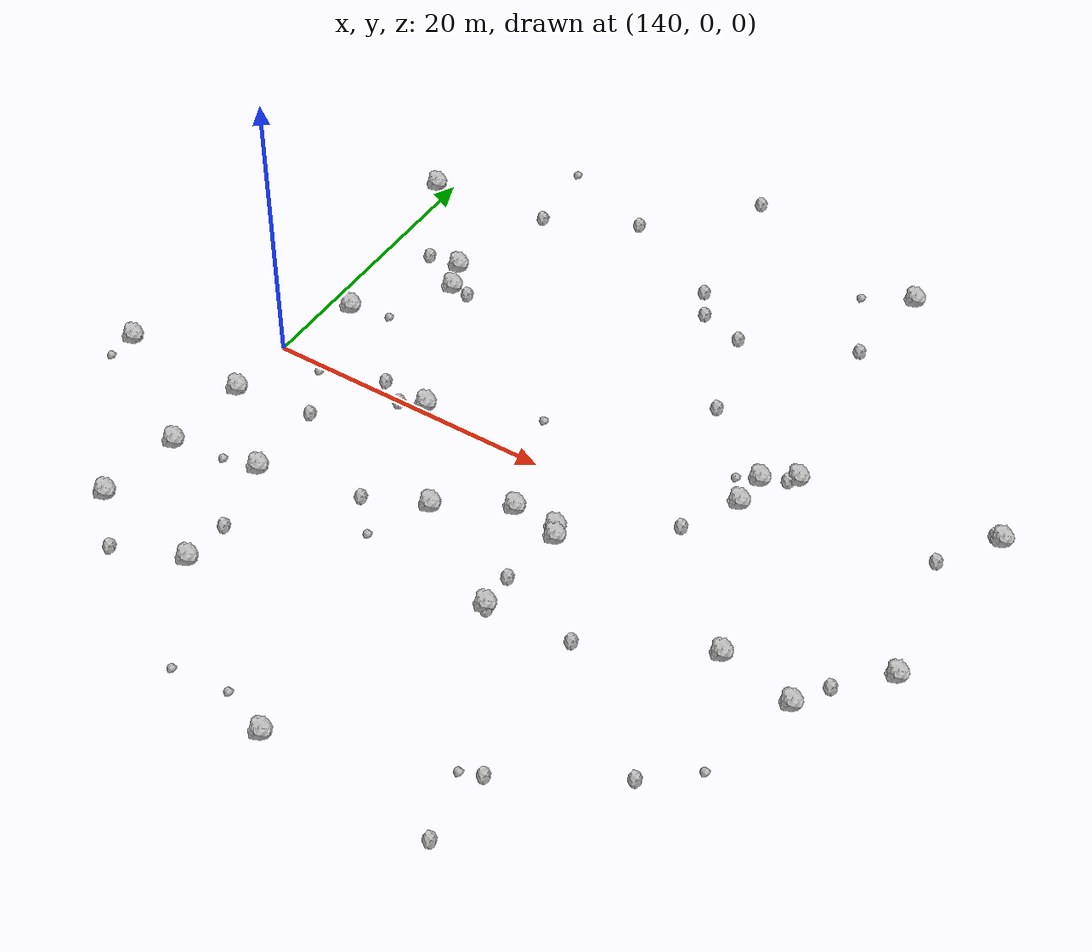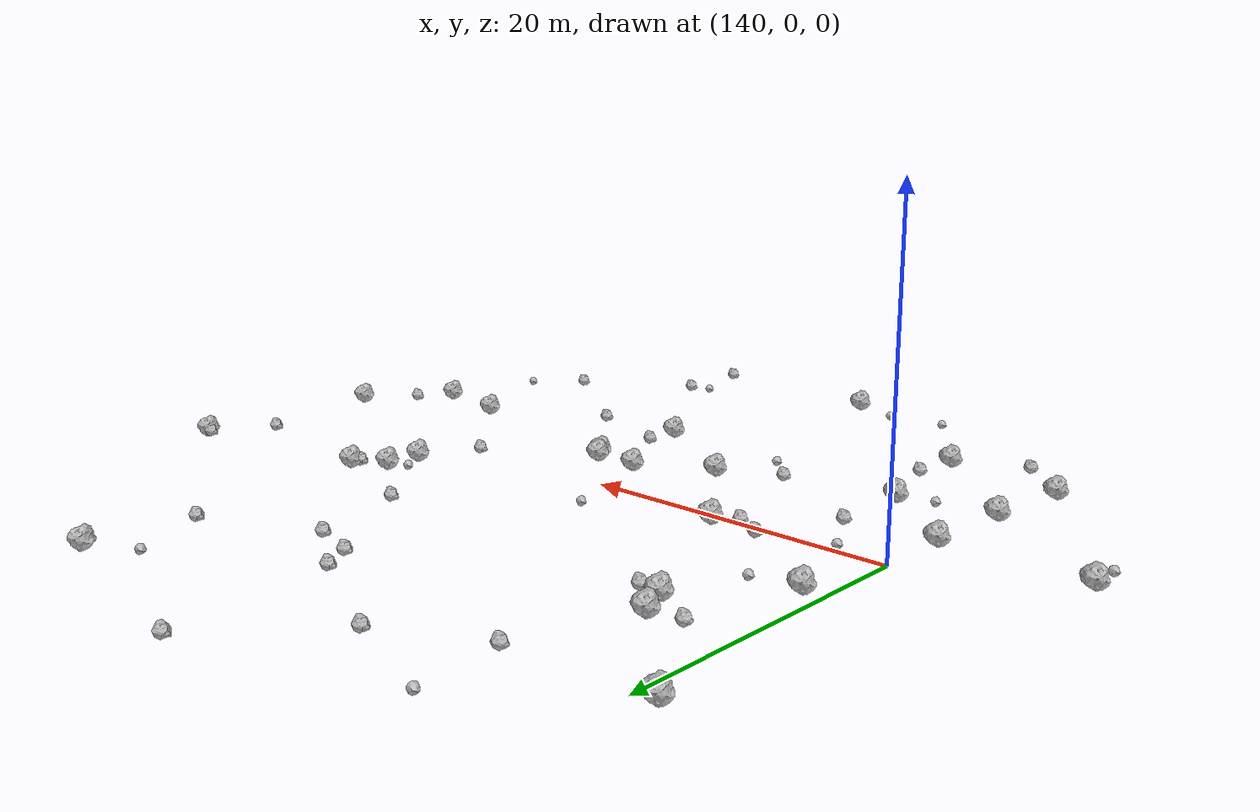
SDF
<sdf version="1.6">
 <world name="default">
  <include><uri>model://sun</uri></include>
  <model name="rock1_4_2">
   <include><uri>model://rock1</uri><pose>139.98322655730263 -4.9391794960433835 0.5 0 0 0</pose></include>
  </model>
  <model name="rock1_4_3">
   <include><uri>model://rock1</uri><pose>146.6829092603969 -18.51154529494071 0.5 0 0 0</pose></include>
  </model>
  <model name="rock1_4_4">
   <include><uri>model://rock1</uri><pose>141.50115227832333 5.5322805019118135 0.5 0 0 0</pose></include>
  </model>
  <model name="rock1_4_5">
   <include><uri>model://rock1</uri><pose>156.54032484201812 -6.746740473950506 0.5 0 0 0</pose></include>
  </model>
  <model name="rock1_4_6">
   <include><uri>model://rock1</uri><pose>173.13317273243348 26.76240483843972 0.5 0 0 0</pose></include>
  </model>
  <model name="rock1_4_7">
   <include><uri>model://rock1</uri><pose>187.7747009688663 9.903902033131722 0.5 0 0 0</pose></include>
  </model>
  <model name="rock1_4_8">
   <include><uri>model://rock1</uri><pose>164.5399935904218 -4.8092274558916195 0.5 0 0 0</pose></include>
  </model>
  <model name="rock1_4_9">
   <include><uri>model://rock1</uri><pose>131.13668664782364 -4.766689097549989 0.5 0 0 0</pose></include>
  </model>
  <model name="rock1_4_10">
   <include><uri>model://rock1</uri><pose>177.8880388827148 -7.362613293737663 0.5 0 0 0</pose></include>
  </model>
  <model name="rock1_4_11">
   <include><uri>model://rock1</uri><pose>187.33705126843302 -3.214945462565396 0.5 0 0 0</pose></include>
  </model>
  <model name="rock1_4_12">
   <include><uri>model://rock1</uri><pose>145.2265720160533 12.962065052158614 0.5 0 0 0</pose></include>
  </model>
  <model name="rock1_4_13">
   <include><uri>model://rock1</uri><pose>138.99488661994974 19.40030157969874 0.5 0 0 0</pose></include>
  </model>
  <model name="rock1_4_14">
   <include><uri>model://rock1</uri><pose>172.67673752829654 6.366246679455678 0.5 0 0 0</pose></include>
  </model>
  <model name="rock1_4_15">
   <include><uri>model://rock1</uri><pose>172.5883245059369 3.921640936934992 0.5 0 0 0</pose></include>
  </model>
  <model name="rock1_4_16">
   <include><uri>model://rock1</uri><pose>164.07481888295106 -11.77114898170299 0.5 0 0 0</pose></include>
  </model>
  <model name="rock1_4_17">
   <include><uri>model://rock1</uri><pose>145.52401125802854 -9.945594207063365 0.5 0 0 0</pose></include>
  </model>
  <model name="rock1_4_18">
   <include><uri>model://rock1</uri><pose>138.86175886567014 -16.930379601042915 0.5 0 0 0</pose></include>
  </model>
  <model name="rock1_4_19">
   <include><uri>model://rock1</uri><pose>158.6945756073856 -26.828574528778383 0.5 0 0 0</pose></include>
  </model>
  <model name="rock1_4_20">
   <include><uri>model://rock1</uri><pose>174.69322289370163 7.707764404608163 0.5 0 0 0</pose></include>
  </model>
  <model name="rock1_4_21">
   <include><uri>model://rock1</uri><pose>161.09106545353396 -4.055856849384696 0.5 0 0 0</pose></include>
  </model>
  <model name="rock1_4_22">
   <include><uri>model://rock1</uri><pose>151.17888538414357 0.5036489442901555 0.5 0 0 0</pose></include>
  </model>
  <model name="rock1_4_23">
   <include><uri>model://rock1</uri><pose>183.17537605905753 -8.446394894321159 0.5 0 0 0</pose></include>
  </model>
  <model name="rock1_4_24">
   <include><uri>model://rock1</uri><pose>139.58498180401375 -11.00700763470173 0.5 0 0 0</pose></include>
  </model>
  <model name="rock1_4_25">
   <include><uri>model://rock1</uri><pose>164.14632373489687 -4.134782612445548 0.5 0 0 0</pose></include>
  </model>
  <model name="rock1_4_26">
   <include><uri>model://rock1</uri><pose>146.09643735205785 10.943532728056866 0.5 0 0 0</pose></include>
  </model>
  <model name="rock2_4_0">
   <include><uri>model://rock2</uri><pose>160.8107942080791 19.73469211330285 0.3 0 0 0</pose></include>
  </model>
  <model name="rock2_4_1">
   <include><uri>model://rock2</uri><pose>171.16762547360722 -22.459086385753373 0.3 0 0 0</pose></include>
  </model>
  <model name="rock2_4_2">
   <include><uri>model://rock2</uri><pose>143.02310037742467 12.75552279222461 0.3 0 0 0</pose></include>
  </model>
  <model name="rock2_4_3">
   <include><uri>model://rock2</uri><pose>159.45477770778373 29.967337413647527 0.3 0 0 0</pose></include>
  </model>
  <model name="rock2_4_4">
   <include><uri>model://rock2</uri><pose>147.77424065760184 0.8664687863613594 0.3 0 0 0</pose></include>
  </model>
  <model name="rock2_4_5">
   <include><uri>model://rock2</uri><pose>147.39316222965326 20.32302541111168 0.3 0 0 0</pose></include>
  </model>
  <model name="rock2_4_6">
   <include><uri>model://rock2</uri><pose>171.15610506026326 -27.778739797867523 0.3 0 0 0</pose></include>
  </model>
  <model name="rock2_4_7">
   <include><uri>model://rock2</uri><pose>167.19803936725103 10.466614243856355 0.3 0 0 0</pose></include>
  </model>
  <model name="rock2_4_8">
   <include><uri>model://rock2</uri><pose>169.9621795194494 -11.383922348714236 0.3 0 0 0</pose></include>
  </model>
  <model name="rock2_4_9">
   <include><uri>model://rock2</uri><pose>149.59394983097712 -0.2285622877326965 0.3 0 0 0</pose></include>
  </model>
  <model name="rock2_4_10">
   <include><uri>model://rock2</uri><pose>170.64706248809298 0.1645981223311992 0.3 0 0 0</pose></include>
  </model>
  <model name="rock2_4_11">
   <include><uri>model://rock2</uri><pose>142.0897371813823 -20.32920742476874 0.3 0 0 0</pose></include>
  </model>
  <model name="rock2_4_12">
   <include><uri>model://rock2</uri><pose>161.96832455600466 17.817918868401193 0.3 0 0 0</pose></include>
  </model>
  <model name="rock2_4_13">
   <include><uri>model://rock2</uri><pose>172.42524355031455 20.225455248701437 0.3 0 0 0</pose></include>
  </model>
  <model name="rock2_4_14">
   <include><uri>model://rock2</uri><pose>153.4305260013198 23.366511276113997 0.3 0 0 0</pose></include>
  </model>
  <model name="rock2_4_15">
   <include><uri>model://rock2</uri><pose>146.9157499258153 -15.140916466931495 0.3 0 0 0</pose></include>
  </model>
  <model name="rock2_4_16">
   <include><uri>model://rock2</uri><pose>185.18970145684398 6.098815928842882 0.3 0 0 0</pose></include>
  </model>
  <model name="rock2_4_17">
   <include><uri>model://rock2</uri><pose>152.5556379157435 -8.518406867659845 0.3 0 0 0</pose></include>
  </model>
  <model name="rock2_4_18">
   <include><uri>model://rock2</uri><pose>187.2586773788891 9.989629752530242 0.3 0 0 0</pose></include>
  </model>
  <model name="rock2_4_19">
   <include><uri>model://rock2</uri><pose>164.30279105968287 -11.994272346676354 0.3 0 0 0</pose></include>
  </model>
  <model name="rock2_4_20">
   <include><uri>model://rock2</uri><pose>145.40469273941164 -4.247884957167624 0.3 0 0 0</pose></include>
  </model>
  <model name="rock2_4_21">
   <include><uri>model://rock2</uri><pose>178.47869874562872 -18.040058311371464 0.3 0 0 0</pose></include>
  </model>
  <model name="rock2_4_22">
   <include><uri>model://rock2</uri><pose>163.976263715248 -9.170876790576404 0.3 0 0 0</pose></include>
  </model>
  <model name="rock2_4_23">
   <include><uri>model://rock2</uri><pose>174.25552789283557 7.199885762822106 0.3 0 0 0</pose></include>
  </model>
  <model name="rock2_4_24">
   <include><uri>model://rock2</uri><pose>184.51623707898202 -6.123821970238254 0.3 0 0 0</pose></include>
  </model>
  <model name="rock2_4_25">
   <include><uri>model://rock2</uri><pose>165.07686152316225 16.913340099193405 0.3 0 0 0</pose></include>
  </model>
  <model name="rock2_4_26">
   <include><uri>model://rock2</uri><pose>147.4404160338276 10.816026596584003 0.3 0 0 0</pose></include>
  </model>
  <model name="rock3_4_0">
   <include><uri>model://rock3</uri><pose>143.1124372567395 -10.480098717523447 0.2 0 0 0</pose></include>
  </model>
  <model name="rock3_4_1">
   <include><uri>model://rock3</uri><pose>155.2284681575948 -25.446165935485922 0.2 0 0 0</pose></include>
  </model>
  <model name="rock3_4_2">
   <include><uri>model://rock3</uri><pose>169.7516898792399 -22.987637056584006 0.2 0 0 0</pose></include>
  </model>
  <model name="rock3_4_3">
   <include><uri>model://rock3</uri><pose>151.3266590755743 -25.83862939733295 0.2 0 0 0</pose></include>
  </model>
  <model name="rock3_4_4">
   <include><uri>model://rock3</uri><pose>181.46649628148822 -15.437436542897256 0.2 0 0 0</pose></include>
  </model>
  <model name="rock3_4_5">
   <include><uri>model://rock3</uri><pose>143.42262880751653 -0.6502110918916024 0.2 0 0 0</pose></include>
  </model>
  <model name="rock3_4_6">
   <include><uri>model://rock3</uri><pose>171.27203871770823 5.743423688144489 0.2 0 0 0</pose></include>
  </model>
  <model name="rock3_4_7">
   <include><uri>model://rock3</uri><pose>169.9081105619497 25.086421610944114 0.2 0 0 0</pose></include>
  </model>
  <model name="rock3_4_8">
   <include><uri>model://rock3</uri><pose>158.3428924301597 3.4456287144311304 0.2 0 0 0</pose></include>
  </model>
  <model name="rock3_4_9">
   <include><uri>model://rock3</uri><pose>154.65725005769795 -10.835631683050114 0.2 0 0 0</pose></include>
  </model>
  <model name="rock3_4_10">
   <include><uri>model://rock3</uri><pose>146.74790407265044 25.780958977368265 0.2 0 0 0</pose></include>
  </model>
  <model name="rock3_4_11">
   <include><uri>model://rock3</uri><pose>130.962991832776 -6.869868634386382 0.2 0 0 0</pose></include>
  </model>
  <model name="rock3_4_12">
   <include><uri>model://rock3</uri><pose>144.2067163127842 6.1475293501871136 0.2 0 0 0</pose></include>
  </model>
 </world>
</sdf>
